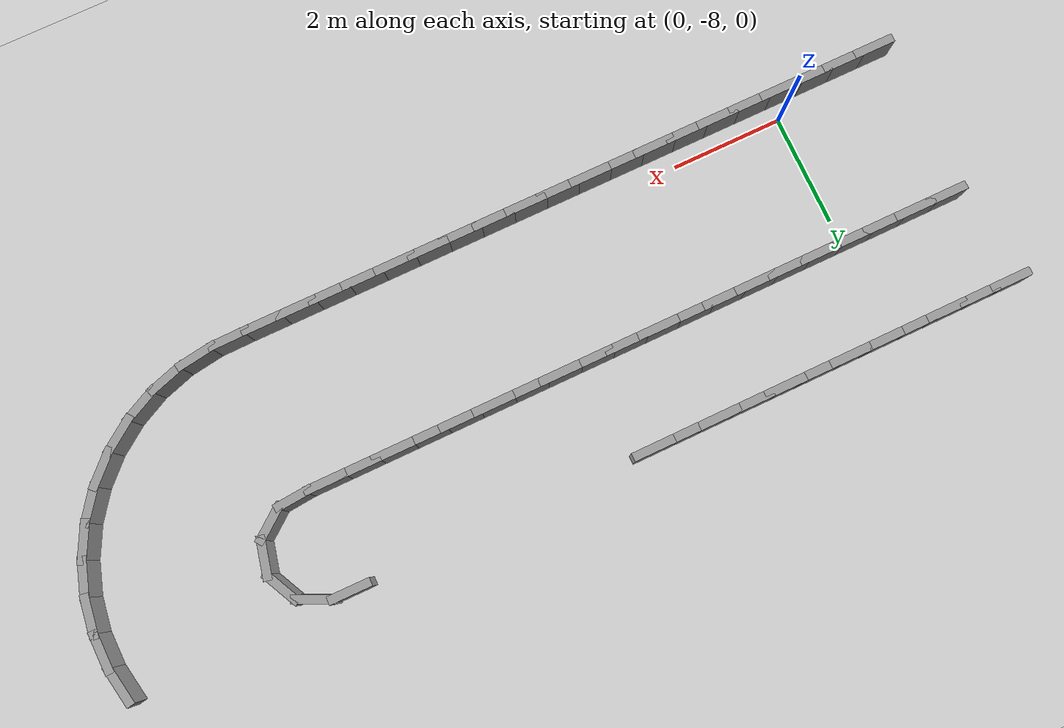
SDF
<sdf version="1.7">
 <world name="default">
  <model name="ground_plane">
   <static>1</static>
   <link name="link">
    <collision name="collision">
     <geometry><plane><normal>0 0 1</normal><size>100 100</size></plane></geometry>
     <surface><friction><ode><mu>100</mu><mu2>50</mu2></ode></friction></surface>
    </collision>
    <visual name="visual">
     <cast_shadows>0</cast_shadows>
     <geometry><plane><normal>0 0 1</normal><size>100 100</size></plane></geometry>
     <material>
      <script><uri>file://media/materials/scripts/gazebo.material</uri><name>Gazebo/Grey</name></script>
     </material>
    </visual>
   </link>
  </model>
  <model name="rand_serp_00">
   <link name="Wall_135">
    <collision name="Wall_135_Collision">
     <geometry><box><size>0.7494 0.1500 0.6000</size></box></geometry>
     <pose>0 0 0.3000 0 -0 0</pose>
    </collision>
    <visual name="Wall_135_Visual">
     <pose>0 0 0.3000 0 -0 0</pose>
     <geometry><box><size>0.7494 0.1500 0.6000</size></box></geometry>
     <material>
      <script><uri>file://media/materials/scripts/gazebo.material</uri><name>Gazebo/Grey</name></script>
      <ambient>1 1 1 1</ambient>
     </material>
    </visual>
    <pose>13.8029 -3.9394 0 0 -0 -1.38775</pose>
   </link>
   <link name="Wall_136">
    <collision name="Wall_136_Collision">
     <geometry><box><size>0.7494 0.1500 0.6000</size></box></geometry>
     <pose>0 0 0.3000 0 -0 0</pose>
    </collision>
    <visual name="Wall_136_Visual">
     <pose>0 0 0.3000 0 -0 0</pose>
     <geometry><box><size>0.7494 0.1500 0.6000</size></box></geometry>
     <material>
      <script><uri>file://media/materials/scripts/gazebo.material</uri><name>Gazebo/Grey</name></script>
      <ambient>1 1 1 1</ambient>
     </material>
    </visual>
    <pose>13.8641 -4.5336 0 0 -0 -1.54843</pose>
   </link>
   <link name="Wall_137">
    <collision name="Wall_137_Collision">
     <geometry><box><size>0.7494 0.1500 0.6000</size></box></geometry>
     <pose>0 0 0.3000 0 -0 0</pose>
    </collision>
    <visual name="Wall_137_Visual">
     <pose>0 0 0.3000 0 -0 0</pose>
     <geometry><box><size>0.7494 0.1500 0.6000</size></box></geometry>
     <material>
      <script><uri>file://media/materials/scripts/gazebo.material</uri><name>Gazebo/Grey</name></script>
      <ambient>1 1 1 1</ambient>
     </material>
    </visual>
    <pose>13.8295 -5.1301 0 0 -0 -1.70915</pose>
   </link>
   <link name="Wall_138">
    <collision name="Wall_138_Collision">
     <geometry><box><size>0.7494 0.1500 0.6000</size></box></geometry>
     <pose>0 0 0.3000 0 -0 0</pose>
    </collision>
    <visual name="Wall_138_Visual">
     <pose>0 0 0.3000 0 -0 0</pose>
     <geometry><box><size>0.7494 0.1500 0.6000</size></box></geometry>
     <material>
      <script><uri>file://media/materials/scripts/gazebo.material</uri><name>Gazebo/Grey</name></script>
      <ambient>1 1 1 1</ambient>
     </material>
    </visual>
    <pose>13.6998 -5.7133 0 0 -0 -1.87020</pose>
   </link>
   <link name="Wall_139">
    <collision name="Wall_139_Collision">
     <geometry><box><size>0.7494 0.1500 0.6000</size></box></geometry>
     <pose>0 0 0.3000 0 -0 0</pose>
    </collision>
    <visual name="Wall_139_Visual">
     <pose>0 0 0.3000 0 -0 0</pose>
     <geometry><box><size>0.7494 0.1500 0.6000</size></box></geometry>
     <material>
      <script><uri>file://media/materials/scripts/gazebo.material</uri><name>Gazebo/Grey</name></script>
      <ambient>1 1 1 1</ambient>
     </material>
    </visual>
    <pose>13.4783 -6.2681 0 0 -0 -2.03089</pose>
   </link>
   <link name="Wall_140">
    <collision name="Wall_140_Collision">
     <geometry><box><size>0.7493 0.1500 0.6000</size></box></geometry>
     <pose>0 0 0.3000 0 -0 0</pose>
    </collision>
    <visual name="Wall_140_Visual">
     <pose>0 0 0.3000 0 -0 0</pose>
     <geometry><box><size>0.7493 0.1500 0.6000</size></box></geometry>
     <material>
      <script><uri>file://media/materials/scripts/gazebo.material</uri><name>Gazebo/Grey</name></script>
      <ambient>1 1 1 1</ambient>
     </material>
    </visual>
    <pose>13.1709 -6.7804 0 0 -0 -2.19157</pose>
   </link>
   <link name="Wall_141">
    <collision name="Wall_141_Collision">
     <geometry><box><size>0.7493 0.1500 0.6000</size></box></geometry>
     <pose>0 0 0.3000 0 -0 0</pose>
    </collision>
    <visual name="Wall_141_Visual">
     <pose>0 0 0.3000 0 -0 0</pose>
     <geometry><box><size>0.7493 0.1500 0.6000</size></box></geometry>
     <material>
      <script><uri>file://media/materials/scripts/gazebo.material</uri><name>Gazebo/Grey</name></script>
      <ambient>1 1 1 1</ambient>
     </material>
    </visual>
    <pose>12.7855 -7.2369 0 0 -0 -2.35226</pose>
   </link>
   <link name="Wall_142">
    <collision name="Wall_142_Collision">
     <geometry><box><size>0.7493 0.1500 0.6000</size></box></geometry>
     <pose>0 0 0.3000 0 -0 0</pose>
    </collision>
    <visual name="Wall_142_Visual">
     <pose>0 0 0.3000 0 -0 0</pose>
     <geometry><box><size>0.7493 0.1500 0.6000</size></box></geometry>
     <material>
      <script><uri>file://media/materials/scripts/gazebo.material</uri><name>Gazebo/Grey</name></script>
      <ambient>1 1 1 1</ambient>
     </material>
    </visual>
    <pose>12.3321 -7.6259 0 0 -0 -2.51294</pose>
   </link>
   <link name="Wall_143">
    <collision name="Wall_143_Collision">
     <geometry><box><size>0.7493 0.1500 0.6000</size></box></geometry>
     <pose>0 0 0.3000 0 -0 0</pose>
    </collision>
    <visual name="Wall_143_Visual">
     <pose>0 0 0.3000 0 -0 0</pose>
     <geometry><box><size>0.7493 0.1500 0.6000</size></box></geometry>
     <material>
      <script><uri>file://media/materials/scripts/gazebo.material</uri><name>Gazebo/Grey</name></script>
      <ambient>1 1 1 1</ambient>
     </material>
    </visual>
    <pose>11.8223 -7.9373 0 0 -0 -2.67362</pose>
   </link>
   <link name="Wall_144">
    <collision name="Wall_144_Collision">
     <geometry><box><size>0.7493 0.1500 0.6000</size></box></geometry>
     <pose>0 0 0.3000 0 -0 0</pose>
    </collision>
    <visual name="Wall_144_Visual">
     <pose>0 0 0.3000 0 -0 0</pose>
     <geometry><box><size>0.7493 0.1500 0.6000</size></box></geometry>
     <material>
      <script><uri>file://media/materials/scripts/gazebo.material</uri><name>Gazebo/Grey</name></script>
      <ambient>1 1 1 1</ambient>
     </material>
    </visual>
    <pose>11.2693 -8.1631 0 0 -0 -2.83431</pose>
   </link>
   <link name="Wall_145">
    <collision name="Wall_145_Collision">
     <geometry><box><size>0.7493 0.1500 0.6000</size></box></geometry>
     <pose>0 0 0.3000 0 -0 0</pose>
    </collision>
    <visual name="Wall_145_Visual">
     <pose>0 0 0.3000 0 -0 0</pose>
     <geometry><box><size>0.7493 0.1500 0.6000</size></box></geometry>
     <material>
      <script><uri>file://media/materials/scripts/gazebo.material</uri><name>Gazebo/Grey</name></script>
      <ambient>1 1 1 1</ambient>
     </material>
    </visual>
    <pose>10.6872 -8.2975 0 0 -0 -2.99499</pose>
   </link>
   <link name="Wall_146">
    <collision name="Wall_146_Collision">
     <geometry><box><size>0.7499 0.1500 0.6000</size></box></geometry>
     <pose>0 0 0.3000 0 -0 0</pose>
    </collision>
    <visual name="Wall_146_Visual">
     <pose>0 0 0.3000 0 -0 0</pose>
     <geometry><box><size>0.7499 0.1500 0.6000</size></box></geometry>
     <material>
      <script><uri>file://media/materials/scripts/gazebo.material</uri><name>Gazebo/Grey</name></script>
      <ambient>1 1 1 1</ambient>
     </material>
    </visual>
    <pose>10.0909 -8.3457 0 0 -0 -3.12682</pose>
   </link>
   <link name="Wall_147">
    <collision name="Wall_147_Collision">
     <geometry><box><size>0.7500 0.1500 0.6000</size></box></geometry>
     <pose>0 0 0.3000 0 -0 0</pose>
    </collision>
    <visual name="Wall_147_Visual">
     <pose>0 0 0.3000 0 -0 0</pose>
     <geometry><box><size>0.7500 0.1500 0.6000</size></box></geometry>
     <material>
      <script><uri>file://media/materials/scripts/gazebo.material</uri><name>Gazebo/Grey</name></script>
      <ambient>1 1 1 1</ambient>
     </material>
    </visual>
    <pose>9.4910 -8.3501 0 0 -0 3.14159</pose>
   </link>
   <link name="Wall_148">
    <collision name="Wall_148_Collision">
     <geometry><box><size>0.7500 0.1500 0.6000</size></box></geometry>
     <pose>0 0 0.3000 0 -0 0</pose>
    </collision>
    <visual name="Wall_148_Visual">
     <pose>0 0 0.3000 0 -0 0</pose>
     <geometry><box><size>0.7500 0.1500 0.6000</size></box></geometry>
     <material>
      <script><uri>file://media/materials/scripts/gazebo.material</uri><name>Gazebo/Grey</name></script>
      <ambient>1 1 1 1</ambient>
     </material>
    </visual>
    <pose>8.8910 -8.3501 0 0 -0 3.14159</pose>
   </link>
   <link name="Wall_149">
    <collision name="Wall_149_Collision">
     <geometry><box><size>0.7500 0.1500 0.6000</size></box></geometry>
     <pose>0 0 0.3000 0 -0 0</pose>
    </collision>
    <visual name="Wall_149_Visual">
     <pose>0 0 0.3000 0 -0 0</pose>
     <geometry><box><size>0.7500 0.1500 0.6000</size></box></geometry>
     <material>
      <script><uri>file://media/materials/scripts/gazebo.material</uri><name>Gazebo/Grey</name></script>
      <ambient>1 1 1 1</ambient>
     </material>
    </visual>
    <pose>8.2910 -8.3501 0 0 -0 3.14159</pose>
   </link>
   <link name="Wall_150">
    <collision name="Wall_150_Collision">
     <geometry><box><size>0.7500 0.1500 0.6000</size></box></geometry>
     <pose>0 0 0.3000 0 -0 0</pose>
    </collision>
    <visual name="Wall_150_Visual">
     <pose>0 0 0.3000 0 -0 0</pose>
     <geometry><box><size>0.7500 0.1500 0.6000</size></box></geometry>
     <material>
      <script><uri>file://media/materials/scripts/gazebo.material</uri><name>Gazebo/Grey</name></script>
      <ambient>1 1 1 1</ambient>
     </material>
    </visual>
    <pose>7.6910 -8.3501 0 0 -0 3.14159</pose>
   </link>
   <link name="Wall_151">
    <collision name="Wall_151_Collision">
     <geometry><box><size>0.7500 0.1500 0.6000</size></box></geometry>
     <pose>0 0 0.3000 0 -0 0</pose>
    </collision>
    <visual name="Wall_151_Visual">
     <pose>0 0 0.3000 0 -0 0</pose>
     <geometry><box><size>0.7500 0.1500 0.6000</size></box></geometry>
     <material>
      <script><uri>file://media/materials/scripts/gazebo.material</uri><name>Gazebo/Grey</name></script>
      <ambient>1 1 1 1</ambient>
     </material>
    </visual>
    <pose>7.0910 -8.3501 0 0 -0 3.14159</pose>
   </link>
   <link name="Wall_152">
    <collision name="Wall_152_Collision">
     <geometry><box><size>0.7500 0.1500 0.6000</size></box></geometry>
     <pose>0 0 0.3000 0 -0 0</pose>
    </collision>
    <visual name="Wall_152_Visual">
     <pose>0 0 0.3000 0 -0 0</pose>
     <geometry><box><size>0.7500 0.1500 0.6000</size></box></geometry>
     <material>
      <script><uri>file://media/materials/scripts/gazebo.material</uri><name>Gazebo/Grey</name></script>
      <ambient>1 1 1 1</ambient>
     </material>
    </visual>
    <pose>6.4910 -8.3501 0 0 -0 3.14159</pose>
   </link>
   <link name="Wall_153">
    <collision name="Wall_153_Collision">
     <geometry><box><size>0.7500 0.1500 0.6000</size></box></geometry>
     <pose>0 0 0.3000 0 -0 0</pose>
    </collision>
    <visual name="Wall_153_Visual">
     <pose>0 0 0.3000 0 -0 0</pose>
     <geometry><box><size>0.7500 0.1500 0.6000</size></box></geometry>
     <material>
      <script><uri>file://media/materials/scripts/gazebo.material</uri><name>Gazebo/Grey</name></script>
      <ambient>1 1 1 1</ambient>
     </material>
    </visual>
    <pose>5.8910 -8.3501 0 0 -0 3.14159</pose>
   </link>
   <link name="Wall_154">
    <collision name="Wall_154_Collision">
     <geometry><box><size>0.7500 0.1500 0.6000</size></box></geometry>
     <pose>0 0 0.3000 0 -0 0</pose>
    </collision>
    <visual name="Wall_154_Visual">
     <pose>0 0 0.3000 0 -0 0</pose>
     <geometry><box><size>0.7500 0.1500 0.6000</size></box></geometry>
     <material>
      <script><uri>file://media/materials/scripts/gazebo.material</uri><name>Gazebo/Grey</name></script>
      <ambient>1 1 1 1</ambient>
     </material>
    </visual>
    <pose>5.2910 -8.3501 0 0 -0 3.14159</pose>
   </link>
   <link name="Wall_155">
    <collision name="Wall_155_Collision">
     <geometry><box><size>0.7500 0.1500 0.6000</size></box></geometry>
     <pose>0 0 0.3000 0 -0 0</pose>
    </collision>
    <visual name="Wall_155_Visual">
     <pose>0 0 0.3000 0 -0 0</pose>
     <geometry><box><size>0.7500 0.1500 0.6000</size></box></geometry>
     <material>
      <script><uri>file://media/materials/scripts/gazebo.material</uri><name>Gazebo/Grey</name></script>
      <ambient>1 1 1 1</ambient>
     </material>
    </visual>
    <pose>4.6910 -8.3501 0 0 -0 3.14159</pose>
   </link>
   <link name="Wall_156">
    <collision name="Wall_156_Collision">
     <geometry><box><size>0.7500 0.1500 0.6000</size></box></geometry>
     <pose>0 0 0.3000 0 -0 0</pose>
    </collision>
    <visual name="Wall_156_Visual">
     <pose>0 0 0.3000 0 -0 0</pose>
     <geometry><box><size>0.7500 0.1500 0.6000</size></box></geometry>
     <material>
      <script><uri>file://media/materials/scripts/gazebo.material</uri><name>Gazebo/Grey</name></script>
      <ambient>1 1 1 1</ambient>
     </material>
    </visual>
    <pose>4.0910 -8.3501 0 0 -0 3.14159</pose>
   </link>
   <link name="Wall_157">
    <collision name="Wall_157_Collision">
     <geometry><box><size>0.7500 0.1500 0.6000</size></box></geometry>
     <pose>0 0 0.3000 0 -0 0</pose>
    </collision>
    <visual name="Wall_157_Visual">
     <pose>0 0 0.3000 0 -0 0</pose>
     <geometry><box><size>0.7500 0.1500 0.6000</size></box></geometry>
     <material>
      <script><uri>file://media/materials/scripts/gazebo.material</uri><name>Gazebo/Grey</name></script>
      <ambient>1 1 1 1</ambient>
     </material>
    </visual>
    <pose>3.4910 -8.3501 0 0 -0 3.14159</pose>
   </link>
   <link name="Wall_158">
    <collision name="Wall_158_Collision">
     <geometry><box><size>0.7500 0.1500 0.6000</size></box></geometry>
     <pose>0 0 0.3000 0 -0 0</pose>
    </collision>
    <visual name="Wall_158_Visual">
     <pose>0 0 0.3000 0 -0 0</pose>
     <geometry><box><size>0.7500 0.1500 0.6000</size></box></geometry>
     <material>
      <script><uri>file://media/materials/scripts/gazebo.material</uri><name>Gazebo/Grey</name></script>
      <ambient>1 1 1 1</ambient>
     </material>
    </visual>
    <pose>2.8910 -8.3501 0 0 -0 3.14159</pose>
   </link>
   <link name="Wall_159">
    <collision name="Wall_159_Collision">
     <geometry><box><size>0.7500 0.1500 0.6000</size></box></geometry>
     <pose>0 0 0.3000 0 -0 0</pose>
    </collision>
    <visual name="Wall_159_Visual">
     <pose>0 0 0.3000 0 -0 0</pose>
     <geometry><box><size>0.7500 0.1500 0.6000</size></box></geometry>
     <material>
      <script><uri>file://media/materials/scripts/gazebo.material</uri><name>Gazebo/Grey</name></script>
      <ambient>1 1 1 1</ambient>
     </material>
    </visual>
    <pose>2.2910 -8.3501 0 0 -0 3.14159</pose>
   </link>
   <link name="Wall_160">
    <collision name="Wall_160_Collision">
     <geometry><box><size>0.7500 0.1500 0.6000</size></box></geometry>
     <pose>0 0 0.3000 0 -0 0</pose>
    </collision>
    <visual name="Wall_160_Visual">
     <pose>0 0 0.3000 0 -0 0</pose>
     <geometry><box><size>0.7500 0.1500 0.6000</size></box></geometry>
     <material>
      <script><uri>file://media/materials/scripts/gazebo.material</uri><name>Gazebo/Grey</name></script>
      <ambient>1 1 1 1</ambient>
     </material>
    </visual>
    <pose>1.6910 -8.3501 0 0 -0 3.14159</pose>
   </link>
   <link name="Wall_161">
    <collision name="Wall_161_Collision">
     <geometry><box><size>0.7500 0.1500 0.6000</size></box></geometry>
     <pose>0 0 0.3000 0 -0 0</pose>
    </collision>
    <visual name="Wall_161_Visual">
     <pose>0 0 0.3000 0 -0 0</pose>
     <geometry><box><size>0.7500 0.1500 0.6000</size></box></geometry>
     <material>
      <script><uri>file://media/materials/scripts/gazebo.material</uri><name>Gazebo/Grey</name></script>
      <ambient>1 1 1 1</ambient>
     </material>
    </visual>
    <pose>1.0910 -8.3501 0 0 -0 3.14159</pose>
   </link>
   <link name="Wall_162">
    <collision name="Wall_162_Collision">
     <geometry><box><size>0.7500 0.1500 0.6000</size></box></geometry>
     <pose>0 0 0.3000 0 -0 0</pose>
    </collision>
    <visual name="Wall_162_Visual">
     <pose>0 0 0.3000 0 -0 0</pose>
     <geometry><box><size>0.7500 0.1500 0.6000</size></box></geometry>
     <material>
      <script><uri>file://media/materials/scripts/gazebo.material</uri><name>Gazebo/Grey</name></script>
      <ambient>1 1 1 1</ambient>
     </material>
    </visual>
    <pose>0.4910 -8.3501 0 0 -0 3.14159</pose>
   </link>
   <link name="Wall_163">
    <collision name="Wall_163_Collision">
     <geometry><box><size>0.7500 0.1500 0.6000</size></box></geometry>
     <pose>0 0 0.3000 0 -0 0</pose>
    </collision>
    <visual name="Wall_163_Visual">
     <pose>0 0 0.3000 0 -0 0</pose>
     <geometry><box><size>0.7500 0.1500 0.6000</size></box></geometry>
     <material>
      <script><uri>file://media/materials/scripts/gazebo.material</uri><name>Gazebo/Grey</name></script>
      <ambient>1 1 1 1</ambient>
     </material>
    </visual>
    <pose>-0.1090 -8.3501 0 0 -0 3.14159</pose>
   </link>
   <link name="Wall_164">
    <collision name="Wall_164_Collision">
     <geometry><box><size>0.7500 0.1500 0.6000</size></box></geometry>
     <pose>0 0 0.3000 0 -0 0</pose>
    </collision>
    <visual name="Wall_164_Visual">
     <pose>0 0 0.3000 0 -0 0</pose>
     <geometry><box><size>0.7500 0.1500 0.6000</size></box></geometry>
     <material>
      <script><uri>file://media/materials/scripts/gazebo.material</uri><name>Gazebo/Grey</name></script>
      <ambient>1 1 1 1</ambient>
     </material>
    </visual>
    <pose>-0.7090 -8.3501 0 0 -0 3.14159</pose>
   </link>
   <link name="Wall_165">
    <collision name="Wall_165_Collision">
     <geometry><box><size>0.7500 0.1500 0.6000</size></box></geometry>
     <pose>0 0 0.3000 0 -0 0</pose>
    </collision>
    <visual name="Wall_165_Visual">
     <pose>0 0 0.3000 0 -0 0</pose>
     <geometry><box><size>0.7500 0.1500 0.6000</size></box></geometry>
     <material>
      <script><uri>file://media/materials/scripts/gazebo.material</uri><name>Gazebo/Grey</name></script>
      <ambient>1 1 1 1</ambient>
     </material>
    </visual>
    <pose>-1.3090 -8.3501 0 0 -0 3.14159</pose>
   </link>
   <link name="Wall_166">
    <collision name="Wall_166_Collision">
     <geometry><box><size>0.7500 0.1500 0.6000</size></box></geometry>
     <pose>0 0 0.3000 0 -0 0</pose>
    </collision>
    <visual name="Wall_166_Visual">
     <pose>0 0 0.3000 0 -0 0</pose>
     <geometry><box><size>0.7500 0.1500 0.6000</size></box></geometry>
     <material>
      <script><uri>file://media/materials/scripts/gazebo.material</uri><name>Gazebo/Grey</name></script>
      <ambient>1 1 1 1</ambient>
     </material>
    </visual>
    <pose>-1.9090 -8.3501 0 0 -0 3.14159</pose>
   </link>
   <link name="Wall_288">
    <collision name="Wall_288_Collision">
     <geometry><box><size>0.7500 0.1500 0.6000</size></box></geometry>
     <pose>0 0 0.3000 0 -0 0</pose>
    </collision>
    <visual name="Wall_288_Visual">
     <pose>0 0 0.3000 0 -0 0</pose>
     <geometry><box><size>0.7500 0.1500 0.6000</size></box></geometry>
     <material>
      <script><uri>file://media/materials/scripts/gazebo.material</uri><name>Gazebo/Grey</name></script>
      <ambient>1 1 1 1</ambient>
     </material>
    </visual>
    <pose>-2.0747 -3.7339 0 0 -0 0.00000</pose>
   </link>
   <link name="Wall_289">
    <collision name="Wall_289_Collision">
     <geometry><box><size>0.7500 0.1500 0.6000</size></box></geometry>
     <pose>0 0 0.3000 0 -0 0</pose>
    </collision>
    <visual name="Wall_289_Visual">
     <pose>0 0 0.3000 0 -0 0</pose>
     <geometry><box><size>0.7500 0.1500 0.6000</size></box></geometry>
     <material>
      <script><uri>file://media/materials/scripts/gazebo.material</uri><name>Gazebo/Grey</name></script>
      <ambient>1 1 1 1</ambient>
     </material>
    </visual>
    <pose>-1.4747 -3.7339 0 0 -0 0.00000</pose>
   </link>
   <link name="Wall_290">
    <collision name="Wall_290_Collision">
     <geometry><box><size>0.7500 0.1500 0.6000</size></box></geometry>
     <pose>0 0 0.3000 0 -0 0</pose>
    </collision>
    <visual name="Wall_290_Visual">
     <pose>0 0 0.3000 0 -0 0</pose>
     <geometry><box><size>0.7500 0.1500 0.6000</size></box></geometry>
     <material>
      <script><uri>file://media/materials/scripts/gazebo.material</uri><name>Gazebo/Grey</name></script>
      <ambient>1 1 1 1</ambient>
     </material>
    </visual>
    <pose>-0.8747 -3.7339 0 0 -0 0.00000</pose>
   </link>
   <link name="Wall_291">
    <collision name="Wall_291_Collision">
     <geometry><box><size>0.7500 0.1500 0.6000</size></box></geometry>
     <pose>0 0 0.3000 0 -0 0</pose>
    </collision>
    <visual name="Wall_291_Visual">
     <pose>0 0 0.3000 0 -0 0</pose>
     <geometry><box><size>0.7500 0.1500 0.6000</size></box></geometry>
     <material>
      <script><uri>file://media/materials/scripts/gazebo.material</uri><name>Gazebo/Grey</name></script>
      <ambient>1 1 1 1</ambient>
     </material>
    </visual>
    <pose>-0.2747 -3.7339 0 0 -0 0.00000</pose>
   </link>
   <link name="Wall_292">
    <collision name="Wall_292_Collision">
     <geometry><box><size>0.7500 0.1500 0.6000</size></box></geometry>
     <pose>0 0 0.3000 0 -0 0</pose>
    </collision>
    <visual name="Wall_292_Visual">
     <pose>0 0 0.3000 0 -0 0</pose>
     <geometry><box><size>0.7500 0.1500 0.6000</size></box></geometry>
     <material>
      <script><uri>file://media/materials/scripts/gazebo.material</uri><name>Gazebo/Grey</name></script>
      <ambient>1 1 1 1</ambient>
     </material>
    </visual>
    <pose>0.3253 -3.7339 0 0 -0 0.00000</pose>
   </link>
   <link name="Wall_293">
    <collision name="Wall_293_Collision">
     <geometry><box><size>0.7500 0.1500 0.6000</size></box></geometry>
     <pose>0 0 0.3000 0 -0 0</pose>
    </collision>
    <visual name="Wall_293_Visual">
     <pose>0 0 0.3000 0 -0 0</pose>
     <geometry><box><size>0.7500 0.1500 0.6000</size></box></geometry>
     <material>
      <script><uri>file://media/materials/scripts/gazebo.material</uri><name>Gazebo/Grey</name></script>
      <ambient>1 1 1 1</ambient>
     </material>
    </visual>
    <pose>0.9253 -3.7339 0 0 -0 0.00000</pose>
   </link>
   <link name="Wall_294">
    <collision name="Wall_294_Collision">
     <geometry><box><size>0.7500 0.1500 0.6000</size></box></geometry>
     <pose>0 0 0.3000 0 -0 0</pose>
    </collision>
    <visual name="Wall_294_Visual">
     <pose>0 0 0.3000 0 -0 0</pose>
     <geometry><box><size>0.7500 0.1500 0.6000</size></box></geometry>
     <material>
      <script><uri>file://media/materials/scripts/gazebo.material</uri><name>Gazebo/Grey</name></script>
      <ambient>1 1 1 1</ambient>
     </material>
    </visual>
    <pose>1.5253 -3.7339 0 0 -0 0.00000</pose>
   </link>
   <link name="Wall_295">
    <collision name="Wall_295_Collision">
     <geometry><box><size>0.7500 0.1500 0.6000</size></box></geometry>
     <pose>0 0 0.3000 0 -0 0</pose>
    </collision>
    <visual name="Wall_295_Visual">
     <pose>0 0 0.3000 0 -0 0</pose>
     <geometry><box><size>0.7500 0.1500 0.6000</size></box></geometry>
     <material>
      <script><uri>file://media/materials/scripts/gazebo.material</uri><name>Gazebo/Grey</name></script>
      <ambient>1 1 1 1</ambient>
     </material>
    </visual>
    <pose>2.1253 -3.7339 0 0 -0 0.00000</pose>
   </link>
   <link name="Wall_296">
    <collision name="Wall_296_Collision">
     <geometry><box><size>0.7500 0.1500 0.6000</size></box></geometry>
     <pose>0 0 0.3000 0 -0 0</pose>
    </collision>
    <visual name="Wall_296_Visual">
     <pose>0 0 0.3000 0 -0 0</pose>
     <geometry><box><size>0.7500 0.1500 0.6000</size></box></geometry>
     <material>
      <script><uri>file://media/materials/scripts/gazebo.material</uri><name>Gazebo/Grey</name></script>
      <ambient>1 1 1 1</ambient>
     </material>
    </visual>
    <pose>2.7253 -3.7339 0 0 -0 0.00000</pose>
   </link>
   <link name="Wall_297">
    <collision name="Wall_297_Collision">
     <geometry><box><size>0.7500 0.1500 0.6000</size></box></geometry>
     <pose>0 0 0.3000 0 -0 0</pose>
    </collision>
    <visual name="Wall_297_Visual">
     <pose>0 0 0.3000 0 -0 0</pose>
     <geometry><box><size>0.7500 0.1500 0.6000</size></box></geometry>
     <material>
      <script><uri>file://media/materials/scripts/gazebo.material</uri><name>Gazebo/Grey</name></script>
      <ambient>1 1 1 1</ambient>
     </material>
    </visual>
    <pose>3.3253 -3.7339 0 0 -0 0.00000</pose>
   </link>
   <link name="Wall_298">
    <collision name="Wall_298_Collision">
     <geometry><box><size>0.7500 0.1500 0.6000</size></box></geometry>
     <pose>0 0 0.3000 0 -0 0</pose>
    </collision>
    <visual name="Wall_298_Visual">
     <pose>0 0 0.3000 0 -0 0</pose>
     <geometry><box><size>0.7500 0.1500 0.6000</size></box></geometry>
     <material>
      <script><uri>file://media/materials/scripts/gazebo.material</uri><name>Gazebo/Grey</name></script>
      <ambient>1 1 1 1</ambient>
     </material>
    </visual>
    <pose>3.9253 -3.7339 0 0 -0 0.00000</pose>
   </link>
   <link name="Wall_299">
    <collision name="Wall_299_Collision">
     <geometry><box><size>0.7500 0.1500 0.6000</size></box></geometry>
     <pose>0 0 0.3000 0 -0 0</pose>
    </collision>
    <visual name="Wall_299_Visual">
     <pose>0 0 0.3000 0 -0 0</pose>
     <geometry><box><size>0.7500 0.1500 0.6000</size></box></geometry>
     <material>
      <script><uri>file://media/materials/scripts/gazebo.material</uri><name>Gazebo/Grey</name></script>
      <ambient>1 1 1 1</ambient>
     </material>
    </visual>
    <pose>4.5253 -3.7339 0 0 -0 0.00000</pose>
   </link>
   <link name="Wall_308">
    <collision name="Wall_308_Collision">
     <geometry><box><size>0.7499 0.1500 0.6000</size></box></geometry>
     <pose>0 0 0.3000 0 -0 0</pose>
    </collision>
    <visual name="Wall_308_Visual">
     <pose>0 0 0.3000 0 -0 0</pose>
     <geometry><box><size>0.7499 0.1500 0.6000</size></box></geometry>
     <material>
      <script><uri>file://media/materials/scripts/gazebo.material</uri><name>Gazebo/Grey</name></script>
      <ambient>1 1 1 1</ambient>
     </material>
    </visual>
    <pose>9.9253 -3.7359 0 0 -0 -0.00660</pose>
   </link>
   <link name="Wall_309">
    <collision name="Wall_309_Collision">
     <geometry><box><size>0.7384 0.1500 0.6000</size></box></geometry>
     <pose>0 0 0.3000 0 -0 0</pose>
    </collision>
    <visual name="Wall_309_Visual">
     <pose>0 0 0.3000 0 -0 0</pose>
     <geometry><box><size>0.7384 0.1500 0.6000</size></box></geometry>
     <material>
      <script><uri>file://media/materials/scripts/gazebo.material</uri><name>Gazebo/Grey</name></script>
      <ambient>1 1 1 1</ambient>
     </material>
    </visual>
    <pose>10.4923 -3.8613 0 0 -0 -0.43299</pose>
   </link>
   <link name="Wall_310">
    <collision name="Wall_310_Collision">
     <geometry><box><size>0.7384 0.1500 0.6000</size></box></geometry>
     <pose>0 0 0.3000 0 -0 0</pose>
    </collision>
    <visual name="Wall_310_Visual">
     <pose>0 0 0.3000 0 -0 0</pose>
     <geometry><box><size>0.7384 0.1500 0.6000</size></box></geometry>
     <material>
      <script><uri>file://media/materials/scripts/gazebo.material</uri><name>Gazebo/Grey</name></script>
      <ambient>1 1 1 1</ambient>
     </material>
    </visual>
    <pose>10.8893 -4.2487 0 0 -0 -1.11305</pose>
   </link>
   <link name="Wall_311">
    <collision name="Wall_311_Collision">
     <geometry><box><size>0.7384 0.1500 0.6000</size></box></geometry>
     <pose>0 0 0.3000 0 -0 0</pose>
    </collision>
    <visual name="Wall_311_Visual">
     <pose>0 0 0.3000 0 -0 0</pose>
     <geometry><box><size>0.7384 0.1500 0.6000</size></box></geometry>
     <material>
      <script><uri>file://media/materials/scripts/gazebo.material</uri><name>Gazebo/Grey</name></script>
      <ambient>1 1 1 1</ambient>
     </material>
    </visual>
    <pose>10.9545 -4.7996 0 0 -0 -1.79311</pose>
   </link>
   <link name="Wall_312">
    <collision name="Wall_312_Collision">
     <geometry><box><size>0.7384 0.1500 0.6000</size></box></geometry>
     <pose>0 0 0.3000 0 -0 0</pose>
    </collision>
    <visual name="Wall_312_Visual">
     <pose>0 0 0.3000 0 -0 0</pose>
     <geometry><box><size>0.7384 0.1500 0.6000</size></box></geometry>
     <material>
      <script><uri>file://media/materials/scripts/gazebo.material</uri><name>Gazebo/Grey</name></script>
      <ambient>1 1 1 1</ambient>
     </material>
    </visual>
    <pose>10.6587 -5.2689 0 0 -0 -2.47318</pose>
   </link>
   <link name="Wall_313">
    <collision name="Wall_313_Collision">
     <geometry><box><size>0.6902 0.1500 0.6000</size></box></geometry>
     <pose>0 0 0.3000 0 -0 0</pose>
    </collision>
    <visual name="Wall_313_Visual">
     <pose>0 0 0.3000 0 -0 0</pose>
     <geometry><box><size>0.6902 0.1500 0.6000</size></box></geometry>
     <material>
      <script><uri>file://media/materials/scripts/gazebo.material</uri><name>Gazebo/Grey</name></script>
      <ambient>1 1 1 1</ambient>
     </material>
    </visual>
    <pose>10.1588 -5.4749 0 0 -0 -3.05400</pose>
   </link>
   <link name="Wall_314">
    <collision name="Wall_314_Collision">
     <geometry><box><size>0.7500 0.1500 0.6000</size></box></geometry>
     <pose>0 0 0.3000 0 -0 0</pose>
    </collision>
    <visual name="Wall_314_Visual">
     <pose>0 0 0.3000 0 -0 0</pose>
     <geometry><box><size>0.7500 0.1500 0.6000</size></box></geometry>
     <material>
      <script><uri>file://media/materials/scripts/gazebo.material</uri><name>Gazebo/Grey</name></script>
      <ambient>1 1 1 1</ambient>
     </material>
    </visual>
    <pose>9.5897 -5.4985 0 0 -0 3.14159</pose>
   </link>
   <link name="Wall_315">
    <collision name="Wall_315_Collision">
     <geometry><box><size>0.7500 0.1500 0.6000</size></box></geometry>
     <pose>0 0 0.3000 0 -0 0</pose>
    </collision>
    <visual name="Wall_315_Visual">
     <pose>0 0 0.3000 0 -0 0</pose>
     <geometry><box><size>0.7500 0.1500 0.6000</size></box></geometry>
     <material>
      <script><uri>file://media/materials/scripts/gazebo.material</uri><name>Gazebo/Grey</name></script>
      <ambient>1 1 1 1</ambient>
     </material>
    </visual>
    <pose>8.9897 -5.4985 0 0 -0 3.14159</pose>
   </link>
   <link name="Wall_316">
    <collision name="Wall_316_Collision">
     <geometry><box><size>0.7500 0.1500 0.6000</size></box></geometry>
     <pose>0 0 0.3000 0 -0 0</pose>
    </collision>
    <visual name="Wall_316_Visual">
     <pose>0 0 0.3000 0 -0 0</pose>
     <geometry><box><size>0.7500 0.1500 0.6000</size></box></geometry>
     <material>
      <script><uri>file://media/materials/scripts/gazebo.material</uri><name>Gazebo/Grey</name></script>
      <ambient>1 1 1 1</ambient>
     </material>
    </visual>
    <pose>8.3897 -5.4985 0 0 -0 3.14159</pose>
   </link>
   <link name="Wall_317">
    <collision name="Wall_317_Collision">
     <geometry><box><size>0.7500 0.1500 0.6000</size></box></geometry>
     <pose>0 0 0.3000 0 -0 0</pose>
    </collision>
    <visual name="Wall_317_Visual">
     <pose>0 0 0.3000 0 -0 0</pose>
     <geometry><box><size>0.7500 0.1500 0.6000</size></box></geometry>
     <material>
      <script><uri>file://media/materials/scripts/gazebo.material</uri><name>Gazebo/Grey</name></script>
      <ambient>1 1 1 1</ambient>
     </material>
    </visual>
    <pose>7.7897 -5.4985 0 0 -0 3.14159</pose>
   </link>
   <link name="Wall_318">
    <collision name="Wall_318_Collision">
     <geometry><box><size>0.7500 0.1500 0.6000</size></box></geometry>
     <pose>0 0 0.3000 0 -0 0</pose>
    </collision>
    <visual name="Wall_318_Visual">
     <pose>0 0 0.3000 0 -0 0</pose>
     <geometry><box><size>0.7500 0.1500 0.6000</size></box></geometry>
     <material>
      <script><uri>file://media/materials/scripts/gazebo.material</uri><name>Gazebo/Grey</name></script>
      <ambient>1 1 1 1</ambient>
     </material>
    </visual>
    <pose>7.1897 -5.4985 0 0 -0 3.14159</pose>
   </link>
   <link name="Wall_319">
    <collision name="Wall_319_Collision">
     <geometry><box><size>0.7500 0.1500 0.6000</size></box></geometry>
     <pose>0 0 0.3000 0 -0 0</pose>
    </collision>
    <visual name="Wall_319_Visual">
     <pose>0 0 0.3000 0 -0 0</pose>
     <geometry><box><size>0.7500 0.1500 0.6000</size></box></geometry>
     <material>
      <script><uri>file://media/materials/scripts/gazebo.material</uri><name>Gazebo/Grey</name></script>
      <ambient>1 1 1 1</ambient>
     </material>
    </visual>
    <pose>6.5897 -5.4985 0 0 -0 3.14159</pose>
   </link>
   <link name="Wall_320">
    <collision name="Wall_320_Collision">
     <geometry><box><size>0.7500 0.1500 0.6000</size></box></geometry>
     <pose>0 0 0.3000 0 -0 0</pose>
    </collision>
    <visual name="Wall_320_Visual">
     <pose>0 0 0.3000 0 -0 0</pose>
     <geometry><box><size>0.7500 0.1500 0.6000</size></box></geometry>
     <material>
      <script><uri>file://media/materials/scripts/gazebo.material</uri><name>Gazebo/Grey</name></script>
      <ambient>1 1 1 1</ambient>
     </material>
    </visual>
    <pose>5.9897 -5.4985 0 0 -0 3.14159</pose>
   </link>
   <link name="Wall_321">
    <collision name="Wall_321_Collision">
     <geometry><box><size>0.7500 0.1500 0.6000</size></box></geometry>
     <pose>0 0 0.3000 0 -0 0</pose>
    </collision>
    <visual name="Wall_321_Visual">
     <pose>0 0 0.3000 0 -0 0</pose>
     <geometry><box><size>0.7500 0.1500 0.6000</size></box></geometry>
     <material>
      <script><uri>file://media/materials/scripts/gazebo.material</uri><name>Gazebo/Grey</name></script>
      <ambient>1 1 1 1</ambient>
     </material>
    </visual>
    <pose>5.3897 -5.4985 0 0 -0 3.14159</pose>
   </link>
   <link name="Wall_322">
    <collision name="Wall_322_Collision">
     <geometry><box><size>0.7500 0.1500 0.6000</size></box></geometry>
     <pose>0 0 0.3000 0 -0 0</pose>
    </collision>
    <visual name="Wall_322_Visual">
     <pose>0 0 0.3000 0 -0 0</pose>
     <geometry><box><size>0.7500 0.1500 0.6000</size></box></geometry>
     <material>
      <script><uri>file://media/materials/scripts/gazebo.material</uri><name>Gazebo/Grey</name></script>
      <ambient>1 1 1 1</ambient>
     </material>
    </visual>
    <pose>4.7897 -5.4985 0 0 -0 3.14159</pose>
   </link>
   <link name="Wall_323">
    <collision name="Wall_323_Collision">
     <geometry><box><size>0.7500 0.1500 0.6000</size></box></geometry>
     <pose>0 0 0.3000 0 -0 0</pose>
    </collision>
    <visual name="Wall_323_Visual">
     <pose>0 0 0.3000 0 -0 0</pose>
     <geometry><box><size>0.7500 0.1500 0.6000</size></box></geometry>
     <material>
      <script><uri>file://media/materials/scripts/gazebo.material</uri><name>Gazebo/Grey</name></script>
      <ambient>1 1 1 1</ambient>
     </material>
    </visual>
    <pose>4.1897 -5.4985 0 0 -0 3.14159</pose>
   </link>
   <link name="Wall_324">
    <collision name="Wall_324_Collision">
     <geometry><box><size>0.7500 0.1500 0.6000</size></box></geometry>
     <pose>0 0 0.3000 0 -0 0</pose>
    </collision>
    <visual name="Wall_324_Visual">
     <pose>0 0 0.3000 0 -0 0</pose>
     <geometry><box><size>0.7500 0.1500 0.6000</size></box></geometry>
     <material>
      <script><uri>file://media/materials/scripts/gazebo.material</uri><name>Gazebo/Grey</name></script>
      <ambient>1 1 1 1</ambient>
     </material>
    </visual>
    <pose>3.5897 -5.4985 0 0 -0 3.14159</pose>
   </link>
   <link name="Wall_325">
    <collision name="Wall_325_Collision">
     <geometry><box><size>0.7500 0.1500 0.6000</size></box></geometry>
     <pose>0 0 0.3000 0 -0 0</pose>
    </collision>
    <visual name="Wall_325_Visual">
     <pose>0 0 0.3000 0 -0 0</pose>
     <geometry><box><size>0.7500 0.1500 0.6000</size></box></geometry>
     <material>
      <script><uri>file://media/materials/scripts/gazebo.material</uri><name>Gazebo/Grey</name></script>
      <ambient>1 1 1 1</ambient>
     </material>
    </visual>
    <pose>2.9897 -5.4985 0 0 -0 3.14159</pose>
   </link>
   <link name="Wall_326">
    <collision name="Wall_326_Collision">
     <geometry><box><size>0.7500 0.1500 0.6000</size></box></geometry>
     <pose>0 0 0.3000 0 -0 0</pose>
    </collision>
    <visual name="Wall_326_Visual">
     <pose>0 0 0.3000 0 -0 0</pose>
     <geometry><box><size>0.7500 0.1500 0.6000</size></box></geometry>
     <material>
      <script><uri>file://media/materials/scripts/gazebo.material</uri><name>Gazebo/Grey</name></script>
      <ambient>1 1 1 1</ambient>
     </material>
    </visual>
    <pose>2.3897 -5.4985 0 0 -0 3.14159</pose>
   </link>
   <link name="Wall_327">
    <collision name="Wall_327_Collision">
     <geometry><box><size>0.7500 0.1500 0.6000</size></box></geometry>
     <pose>0 0 0.3000 0 -0 0</pose>
    </collision>
    <visual name="Wall_327_Visual">
     <pose>0 0 0.3000 0 -0 0</pose>
     <geometry><box><size>0.7500 0.1500 0.6000</size></box></geometry>
     <material>
      <script><uri>file://media/materials/scripts/gazebo.material</uri><name>Gazebo/Grey</name></script>
      <ambient>1 1 1 1</ambient>
     </material>
    </visual>
    <pose>1.7897 -5.4985 0 0 -0 3.14159</pose>
   </link>
   <link name="Wall_328">
    <collision name="Wall_328_Collision">
     <geometry><box><size>0.7500 0.1500 0.6000</size></box></geometry>
     <pose>0 0 0.3000 0 -0 0</pose>
    </collision>
    <visual name="Wall_328_Visual">
     <pose>0 0 0.3000 0 -0 0</pose>
     <geometry><box><size>0.7500 0.1500 0.6000</size></box></geometry>
     <material>
      <script><uri>file://media/materials/scripts/gazebo.material</uri><name>Gazebo/Grey</name></script>
      <ambient>1 1 1 1</ambient>
     </material>
    </visual>
    <pose>1.1897 -5.4985 0 0 -0 3.14159</pose>
   </link>
   <link name="Wall_329">
    <collision name="Wall_329_Collision">
     <geometry><box><size>0.7500 0.1500 0.6000</size></box></geometry>
     <pose>0 0 0.3000 0 -0 0</pose>
    </collision>
    <visual name="Wall_329_Visual">
     <pose>0 0 0.3000 0 -0 0</pose>
     <geometry><box><size>0.7500 0.1500 0.6000</size></box></geometry>
     <material>
      <script><uri>file://media/materials/scripts/gazebo.material</uri><name>Gazebo/Grey</name></script>
      <ambient>1 1 1 1</ambient>
     </material>
    </visual>
    <pose>0.5897 -5.4985 0 0 -0 3.14159</pose>
   </link>
   <link name="Wall_330">
    <collision name="Wall_330_Collision">
     <geometry><box><size>0.7500 0.1500 0.6000</size></box></geometry>
     <pose>0 0 0.3000 0 -0 0</pose>
    </collision>
    <visual name="Wall_330_Visual">
     <pose>0 0 0.3000 0 -0 0</pose>
     <geometry><box><size>0.7500 0.1500 0.6000</size></box></geometry>
     <material>
      <script><uri>file://media/materials/scripts/gazebo.material</uri><name>Gazebo/Grey</name></script>
      <ambient>1 1 1 1</ambient>
     </material>
    </visual>
    <pose>-0.0103 -5.4985 0 0 -0 3.14159</pose>
   </link>
   <link name="Wall_331">
    <collision name="Wall_331_Collision">
     <geometry><box><size>0.7500 0.1500 0.6000</size></box></geometry>
     <pose>0 0 0.3000 0 -0 0</pose>
    </collision>
    <visual name="Wall_331_Visual">
     <pose>0 0 0.3000 0 -0 0</pose>
     <geometry><box><size>0.7500 0.1500 0.6000</size></box></geometry>
     <material>
      <script><uri>file://media/materials/scripts/gazebo.material</uri><name>Gazebo/Grey</name></script>
      <ambient>1 1 1 1</ambient>
     </material>
    </visual>
    <pose>-0.6103 -5.4985 0 0 -0 3.14159</pose>
   </link>
   <link name="Wall_332">
    <collision name="Wall_332_Collision">
     <geometry><box><size>0.7500 0.1500 0.6000</size></box></geometry>
     <pose>0 0 0.3000 0 -0 0</pose>
    </collision>
    <visual name="Wall_332_Visual">
     <pose>0 0 0.3000 0 -0 0</pose>
     <geometry><box><size>0.7500 0.1500 0.6000</size></box></geometry>
     <material>
      <script><uri>file://media/materials/scripts/gazebo.material</uri><name>Gazebo/Grey</name></script>
      <ambient>1 1 1 1</ambient>
     </material>
    </visual>
    <pose>-1.2103 -5.4985 0 0 -0 3.14159</pose>
   </link>
   <link name="Wall_333">
    <collision name="Wall_333_Collision">
     <geometry><box><size>0.7500 0.1500 0.6000</size></box></geometry>
     <pose>0 0 0.3000 0 -0 0</pose>
    </collision>
    <visual name="Wall_333_Visual">
     <pose>0 0 0.3000 0 -0 0</pose>
     <geometry><box><size>0.7500 0.1500 0.6000</size></box></geometry>
     <material>
      <script><uri>file://media/materials/scripts/gazebo.material</uri><name>Gazebo/Grey</name></script>
      <ambient>1 1 1 1</ambient>
     </material>
    </visual>
    <pose>-1.8103 -5.4985 0 0 -0 3.14159</pose>
   </link>
   <static>1</static>
  </model>
 </world>
</sdf>
